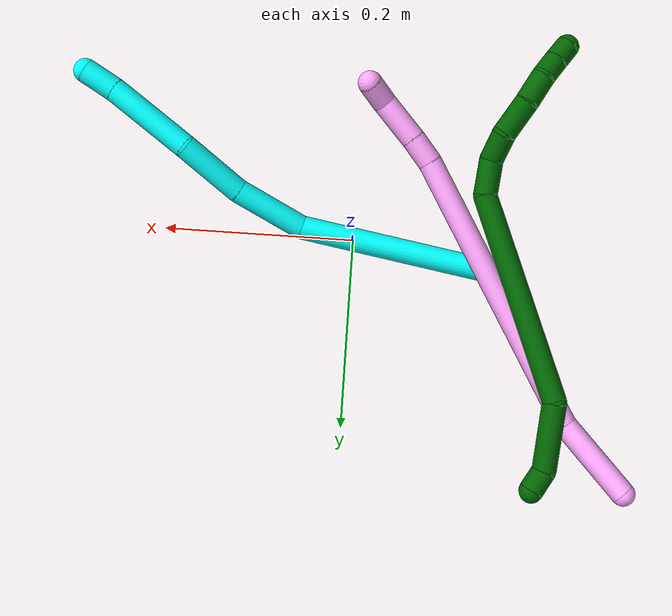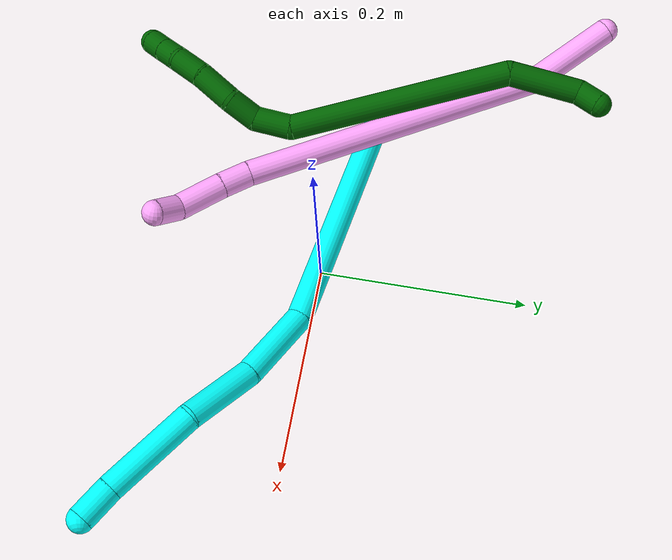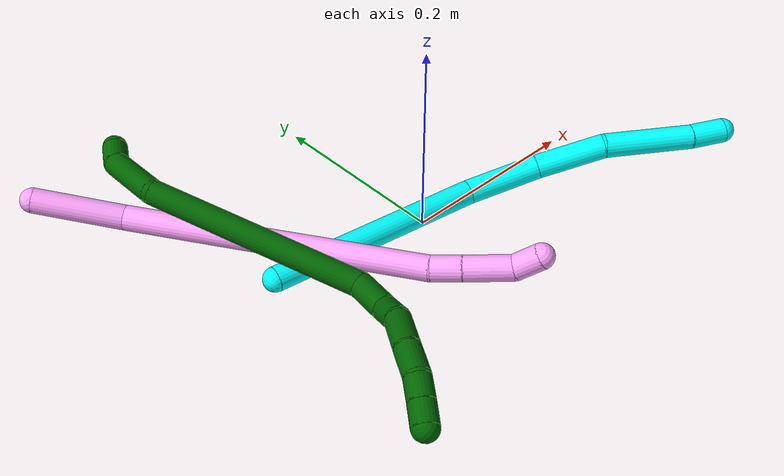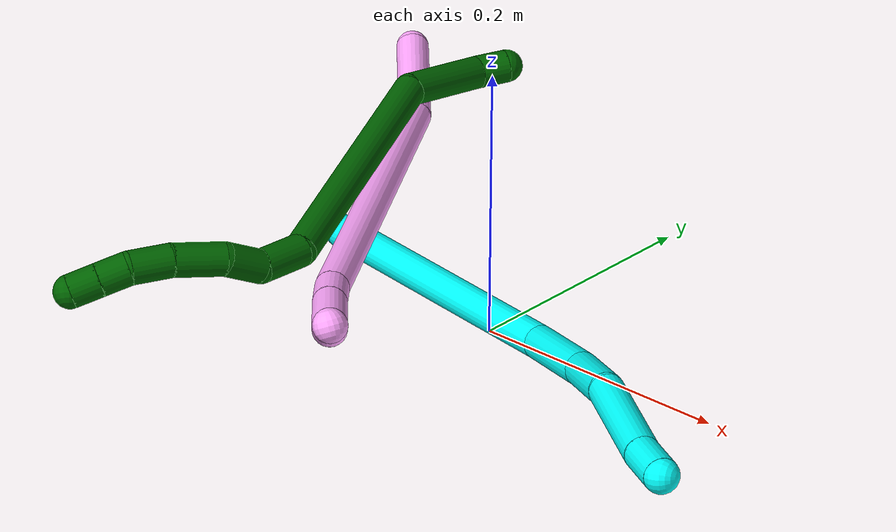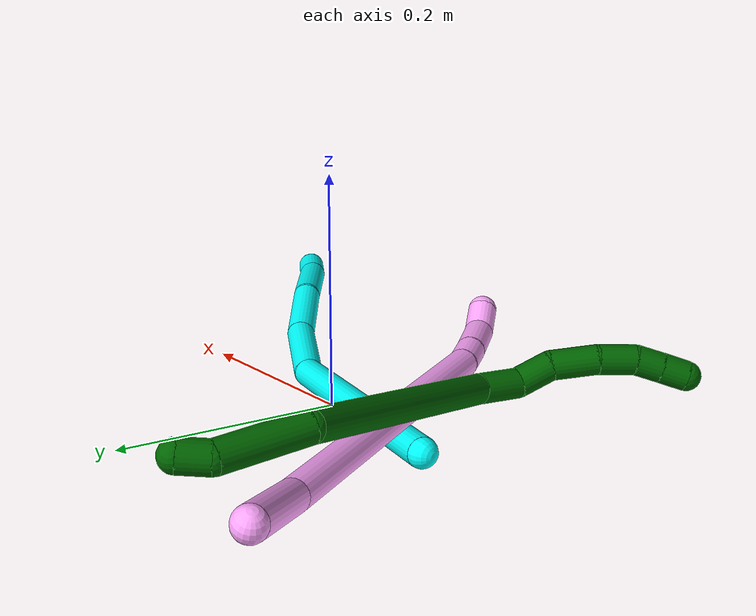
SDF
<sdf version="1.7">
 <world name="default">
  <model name="3">
   <static>0</static>
   <link name="3">
    <collision name="collision-cylinder-e_1_1_4">
     <pose>0.045369 -0.010162 0.103135 0.09821 0.412641 0.020571</pose>
     <geometry><cylinder><radius>0.0125</radius><length>0.226261</length></cylinder></geometry>
     <surface>
      <friction><ode><mu>1.16</mu><mu2>1.16</mu2><slip1>0</slip1><slip2>0</slip2></ode></friction>
      <contact><ode><kp>1e+06</kp><kd>1</kd><max_vel>0</max_vel><min_depth>0.001</min_depth></ode></contact>
     </surface>
    </collision>
    <visual name="visual-cylinder-e_1_1_4">
     <pose>0.045369 -0.010162 0.103135 0.09821 0.412641 0.020571</pose>
     <geometry><cylinder><radius>0.0125</radius><length>0.226261</length></cylinder></geometry>
     <material><ambient>0.003922 1 0.996078 1</ambient></material>
    </visual>
    <collision name="collision-cylinder-e_2_4_5">
     <pose>0.110713 -0.03498 0.235279 0.467855 0.551114 0.13455</pose>
     <geometry><cylinder><radius>0.0125</radius><length>0.076297</length></cylinder></geometry>
     <surface>
      <friction><ode><mu>1.16</mu><mu2>1.16</mu2><slip1>0</slip1><slip2>0</slip2></ode></friction>
      <contact><ode><kp>1e+06</kp><kd>1</kd><max_vel>0</max_vel><min_depth>0.001</min_depth></ode></contact>
     </surface>
    </collision>
    <visual name="visual-cylinder-e_2_4_5">
     <pose>0.110713 -0.03498 0.235279 0.467855 0.551114 0.13455</pose>
     <geometry><cylinder><radius>0.0125</radius><length>0.076297</length></cylinder></geometry>
     <material><ambient>0.003922 1 0.996078 1</ambient></material>
    </visual>
    <collision name="collision-cylinder-e_3_5_6">
     <pose>0.151492 -0.067876 0.286921 0.678273 0.621159 0.225492</pose>
     <geometry><cylinder><radius>0.0125</radius><length>0.071491</length></cylinder></geometry>
     <surface>
      <friction><ode><mu>1.16</mu><mu2>1.16</mu2><slip1>0</slip1><slip2>0</slip2></ode></friction>
      <contact><ode><kp>1e+06</kp><kd>1</kd><max_vel>0</max_vel><min_depth>0.001</min_depth></ode></contact>
     </surface>
    </collision>
    <visual name="visual-cylinder-e_3_5_6">
     <pose>0.151492 -0.067876 0.286921 0.678273 0.621159 0.225492</pose>
     <geometry><cylinder><radius>0.0125</radius><length>0.071491</length></cylinder></geometry>
     <material><ambient>0.003922 1 0.996078 1</ambient></material>
    </visual>
    <collision name="collision-cylinder-e_4_6_7">
     <pose>0.204734 -0.098512 0.33908 0.397541 0.791845 0.167997</pose>
     <geometry><cylinder><radius>0.0125</radius><length>0.091164</length></cylinder></geometry>
     <surface>
      <friction><ode><mu>1.16</mu><mu2>1.16</mu2><slip1>0</slip1><slip2>0</slip2></ode></friction>
      <contact><ode><kp>1e+06</kp><kd>1</kd><max_vel>0</max_vel><min_depth>0.001</min_depth></ode></contact>
     </surface>
    </collision>
    <visual name="visual-cylinder-e_4_6_7">
     <pose>0.204734 -0.098512 0.33908 0.397541 0.791845 0.167997</pose>
     <geometry><cylinder><radius>0.0125</radius><length>0.091164</length></cylinder></geometry>
     <material><ambient>0.003922 1 0.996078 1</ambient></material>
    </visual>
    <collision name="collision-cylinder-e_5_7_2">
     <pose>0.248239 -0.115695 0.381142 0.364656 0.689661 0.132255</pose>
     <geometry><cylinder><radius>0.0125</radius><length>0.034788</length></cylinder></geometry>
     <surface>
      <friction><ode><mu>1.16</mu><mu2>1.16</mu2><slip1>0</slip1><slip2>0</slip2></ode></friction>
      <contact><ode><kp>1e+06</kp><kd>1</kd><max_vel>0</max_vel><min_depth>0.001</min_depth></ode></contact>
     </surface>
    </collision>
    <visual name="visual-cylinder-e_5_7_2">
     <pose>0.248239 -0.115695 0.381142 0.364656 0.689661 0.132255</pose>
     <geometry><cylinder><radius>0.0125</radius><length>0.034788</length></cylinder></geometry>
     <material><ambient>0.003922 1 0.996078 1</ambient></material>
    </visual>
    <collision name="collision-sphere-2">
     <pose>0.259307 -0.120481 0.393679 0 -0 0</pose>
     <geometry><sphere><radius>0.0125</radius></sphere></geometry>
     <surface>
      <friction><ode><mu>1.16</mu><mu2>1.16</mu2><slip1>0</slip1><slip2>0</slip2></ode></friction>
      <contact><ode><kp>1e+06</kp><kd>1</kd><max_vel>0</max_vel><min_depth>0.001</min_depth></ode></contact>
     </surface>
    </collision>
    <visual name="visual-sphere-2">
     <pose>0.259307 -0.120481 0.393679 0 -0 0</pose>
     <geometry><sphere><radius>0.0125</radius></sphere></geometry>
     <material><ambient>0.003922 1 0.996078 1</ambient></material>
    </visual>
    <collision name="collision-sphere-7">
     <pose>0.237172 -0.11091 0.368606 0 -0 0</pose>
     <geometry><sphere><radius>0.0125</radius></sphere></geometry>
     <surface>
      <friction><ode><mu>1.16</mu><mu2>1.16</mu2><slip1>0</slip1><slip2>0</slip2></ode></friction>
      <contact><ode><kp>1e+06</kp><kd>1</kd><max_vel>0</max_vel><min_depth>0.001</min_depth></ode></contact>
     </surface>
    </collision>
    <visual name="visual-sphere-7">
     <pose>0.237172 -0.11091 0.368606 0 -0 0</pose>
     <geometry><sphere><radius>0.0125</radius></sphere></geometry>
     <material><ambient>0.003922 1 0.996078 1</ambient></material>
    </visual>
    <collision name="collision-sphere-6">
     <pose>0.172295 -0.086115 0.309555 0 -0 0</pose>
     <geometry><sphere><radius>0.0125</radius></sphere></geometry>
     <surface>
      <friction><ode><mu>1.16</mu><mu2>1.16</mu2><slip1>0</slip1><slip2>0</slip2></ode></friction>
      <contact><ode><kp>1e+06</kp><kd>1</kd><max_vel>0</max_vel><min_depth>0.001</min_depth></ode></contact>
     </surface>
    </collision>
    <visual name="visual-sphere-6">
     <pose>0.172295 -0.086115 0.309555 0 -0 0</pose>
     <geometry><sphere><radius>0.0125</radius></sphere></geometry>
     <material><ambient>0.003922 1 0.996078 1</ambient></material>
    </visual>
    <collision name="collision-sphere-5">
     <pose>0.130689 -0.049637 0.264287 0 -0 0</pose>
     <geometry><sphere><radius>0.0125</radius></sphere></geometry>
     <surface>
      <friction><ode><mu>1.16</mu><mu2>1.16</mu2><slip1>0</slip1><slip2>0</slip2></ode></friction>
      <contact><ode><kp>1e+06</kp><kd>1</kd><max_vel>0</max_vel><min_depth>0.001</min_depth></ode></contact>
     </surface>
    </collision>
    <visual name="visual-sphere-5">
     <pose>0.130689 -0.049637 0.264287 0 -0 0</pose>
     <geometry><sphere><radius>0.0125</radius></sphere></geometry>
     <material><ambient>0.003922 1 0.996078 1</ambient></material>
    </visual>
    <collision name="collision-sphere-1">
     <geometry><sphere><radius>0.0125</radius></sphere></geometry>
     <surface>
      <friction><ode><mu>1.16</mu><mu2>1.16</mu2><slip1>0</slip1><slip2>0</slip2></ode></friction>
      <contact><ode><kp>1e+06</kp><kd>1</kd><max_vel>0</max_vel><min_depth>0.001</min_depth></ode></contact>
     </surface>
    </collision>
    <visual name="visual-sphere-1">
     <geometry><sphere><radius>0.0125</radius></sphere></geometry>
     <material><ambient>0.003922 1 0.996078 1</ambient></material>
    </visual>
    <collision name="collision-sphere-4">
     <pose>0.090737 -0.020323 0.206271 0 -0 0</pose>
     <geometry><sphere><radius>0.0125</radius></sphere></geometry>
     <surface>
      <friction><ode><mu>1.16</mu><mu2>1.16</mu2><slip1>0</slip1><slip2>0</slip2></ode></friction>
      <contact><ode><kp>1e+06</kp><kd>1</kd><max_vel>0</max_vel><min_depth>0.001</min_depth></ode></contact>
     </surface>
    </collision>
    <visual name="visual-sphere-4">
     <pose>0.090737 -0.020323 0.206271 0 -0 0</pose>
     <geometry><sphere><radius>0.0125</radius></sphere></geometry>
     <material><ambient>0.003922 1 0.996078 1</ambient></material>
    </visual>
    <inertial>
     <pose>0.113685 -0.045652 0.211939 0 -0 0</pose>
     <mass>0.5</mass>
     <inertia>
      <ixx>0.00106</ixx>
      <ixy>0</ixy>
      <ixz>0</ixz>
      <iyy>0.001131</iyy>
      <iyz>0</iyz>
      <izz>-0.000311</izz>
     </inertia>
    </inertial>
   </link>
   <pose>-0.168275 0.026631 0.012626 -1.45761 0.424065 -1.27228</pose>
  </model>
  <model name="4">
   <static>0</static>
   <link name="4">
    <collision name="collision-cylinder-e_1_1_4">
     <pose>0.007569 -0.036116 -0.025963 2.19409 0.168548 0.326597</pose>
     <geometry><cylinder><radius>0.0125</radius><length>0.090238</length></cylinder></geometry>
     <surface>
      <friction><ode><mu>1.16</mu><mu2>1.16</mu2><slip1>0</slip1><slip2>0</slip2></ode></friction>
      <contact><ode><kp>1e+06</kp><kd>1</kd><max_vel>0</max_vel><min_depth>0.001</min_depth></ode></contact>
     </surface>
    </collision>
    <visual name="visual-cylinder-e_1_1_4">
     <pose>0.007569 -0.036116 -0.025963 2.19409 0.168548 0.326597</pose>
     <geometry><cylinder><radius>0.0125</radius><length>0.090238</length></cylinder></geometry>
     <material><ambient>1 0.65098 0.996078 1</ambient></material>
    </visual>
    <collision name="collision-cylinder-e_2_4_5">
     <pose>0.025771 -0.216247 -0.101269 1.90088 0.069739 0.097575</pose>
     <geometry><cylinder><radius>0.0125</radius><length>0.30521</length></cylinder></geometry>
     <surface>
      <friction><ode><mu>1.16</mu><mu2>1.16</mu2><slip1>0</slip1><slip2>0</slip2></ode></friction>
      <contact><ode><kp>1e+06</kp><kd>1</kd><max_vel>0</max_vel><min_depth>0.001</min_depth></ode></contact>
     </surface>
    </collision>
    <visual name="visual-cylinder-e_2_4_5">
     <pose>0.025771 -0.216247 -0.101269 1.90088 0.069739 0.097575</pose>
     <geometry><cylinder><radius>0.0125</radius><length>0.30521</length></cylinder></geometry>
     <material><ambient>1 0.65098 0.996078 1</ambient></material>
    </visual>
    <collision name="collision-cylinder-e_3_5_6">
     <pose>0.039943 -0.373985 -0.155159 1.89085 0.240016 0.330962</pose>
     <geometry><cylinder><radius>0.0125</radius><length>0.029765</length></cylinder></geometry>
     <surface>
      <friction><ode><mu>1.16</mu><mu2>1.16</mu2><slip1>0</slip1><slip2>0</slip2></ode></friction>
      <contact><ode><kp>1e+06</kp><kd>1</kd><max_vel>0</max_vel><min_depth>0.001</min_depth></ode></contact>
     </surface>
    </collision>
    <visual name="visual-cylinder-e_3_5_6">
     <pose>0.039943 -0.373985 -0.155159 1.89085 0.240016 0.330962</pose>
     <geometry><cylinder><radius>0.0125</radius><length>0.029765</length></cylinder></geometry>
     <material><ambient>1 0.65098 0.996078 1</ambient></material>
    </visual>
    <collision name="collision-cylinder-e_4_6_7">
     <pose>0.050038 -0.408904 -0.167649 1.92928 0.281955 0.403874</pose>
     <geometry><cylinder><radius>0.0125</radius><length>0.047133</length></cylinder></geometry>
     <surface>
      <friction><ode><mu>1.16</mu><mu2>1.16</mu2><slip1>0</slip1><slip2>0</slip2></ode></friction>
      <contact><ode><kp>1e+06</kp><kd>1</kd><max_vel>0</max_vel><min_depth>0.001</min_depth></ode></contact>
     </surface>
    </collision>
    <visual name="visual-cylinder-e_4_6_7">
     <pose>0.050038 -0.408904 -0.167649 1.92928 0.281955 0.403874</pose>
     <geometry><cylinder><radius>0.0125</radius><length>0.047133</length></cylinder></geometry>
     <material><ambient>1 0.65098 0.996078 1</ambient></material>
    </visual>
    <collision name="collision-cylinder-e_5_7_2">
     <pose>0.062589 -0.442443 -0.173877 1.43277 0.448328 0.391934</pose>
     <geometry><cylinder><radius>0.0125</radius><length>0.027654</length></cylinder></geometry>
     <surface>
      <friction><ode><mu>1.16</mu><mu2>1.16</mu2><slip1>0</slip1><slip2>0</slip2></ode></friction>
      <contact><ode><kp>1e+06</kp><kd>1</kd><max_vel>0</max_vel><min_depth>0.001</min_depth></ode></contact>
     </surface>
    </collision>
    <visual name="visual-cylinder-e_5_7_2">
     <pose>0.062589 -0.442443 -0.173877 1.43277 0.448328 0.391934</pose>
     <geometry><cylinder><radius>0.0125</radius><length>0.027654</length></cylinder></geometry>
     <material><ambient>1 0.65098 0.996078 1</ambient></material>
    </visual>
    <collision name="collision-sphere-2">
     <pose>0.068582 -0.454785 -0.172162 0 -0 0</pose>
     <geometry><sphere><radius>0.0125</radius></sphere></geometry>
     <surface>
      <friction><ode><mu>1.16</mu><mu2>1.16</mu2><slip1>0</slip1><slip2>0</slip2></ode></friction>
      <contact><ode><kp>1e+06</kp><kd>1</kd><max_vel>0</max_vel><min_depth>0.001</min_depth></ode></contact>
     </surface>
    </collision>
    <visual name="visual-sphere-2">
     <pose>0.068582 -0.454785 -0.172162 0 -0 0</pose>
     <geometry><sphere><radius>0.0125</radius></sphere></geometry>
     <material><ambient>1 0.65098 0.996078 1</ambient></material>
    </visual>
    <collision name="collision-sphere-7">
     <pose>0.056595 -0.430101 -0.175591 0 -0 0</pose>
     <geometry><sphere><radius>0.0125</radius></sphere></geometry>
     <surface>
      <friction><ode><mu>1.16</mu><mu2>1.16</mu2><slip1>0</slip1><slip2>0</slip2></ode></friction>
      <contact><ode><kp>1e+06</kp><kd>1</kd><max_vel>0</max_vel><min_depth>0.001</min_depth></ode></contact>
     </surface>
    </collision>
    <visual name="visual-sphere-7">
     <pose>0.056595 -0.430101 -0.175591 0 -0 0</pose>
     <geometry><sphere><radius>0.0125</radius></sphere></geometry>
     <material><ambient>1 0.65098 0.996078 1</ambient></material>
    </visual>
    <collision name="collision-sphere-6">
     <pose>0.043481 -0.387706 -0.159707 0 -0 0</pose>
     <geometry><sphere><radius>0.0125</radius></sphere></geometry>
     <surface>
      <friction><ode><mu>1.16</mu><mu2>1.16</mu2><slip1>0</slip1><slip2>0</slip2></ode></friction>
      <contact><ode><kp>1e+06</kp><kd>1</kd><max_vel>0</max_vel><min_depth>0.001</min_depth></ode></contact>
     </surface>
    </collision>
    <visual name="visual-sphere-6">
     <pose>0.043481 -0.387706 -0.159707 0 -0 0</pose>
     <geometry><sphere><radius>0.0125</radius></sphere></geometry>
     <material><ambient>1 0.65098 0.996078 1</ambient></material>
    </visual>
    <collision name="collision-sphere-5">
     <pose>0.036405 -0.360263 -0.150611 0 -0 0</pose>
     <geometry><sphere><radius>0.0125</radius></sphere></geometry>
     <surface>
      <friction><ode><mu>1.16</mu><mu2>1.16</mu2><slip1>0</slip1><slip2>0</slip2></ode></friction>
      <contact><ode><kp>1e+06</kp><kd>1</kd><max_vel>0</max_vel><min_depth>0.001</min_depth></ode></contact>
     </surface>
    </collision>
    <visual name="visual-sphere-5">
     <pose>0.036405 -0.360263 -0.150611 0 -0 0</pose>
     <geometry><sphere><radius>0.0125</radius></sphere></geometry>
     <material><ambient>1 0.65098 0.996078 1</ambient></material>
    </visual>
    <collision name="collision-sphere-1">
     <geometry><sphere><radius>0.0125</radius></sphere></geometry>
     <surface>
      <friction><ode><mu>1.16</mu><mu2>1.16</mu2><slip1>0</slip1><slip2>0</slip2></ode></friction>
      <contact><ode><kp>1e+06</kp><kd>1</kd><max_vel>0</max_vel><min_depth>0.001</min_depth></ode></contact>
     </surface>
    </collision>
    <visual name="visual-sphere-1">
     <geometry><sphere><radius>0.0125</radius></sphere></geometry>
     <material><ambient>1 0.65098 0.996078 1</ambient></material>
    </visual>
    <collision name="collision-sphere-4">
     <pose>0.015138 -0.072231 -0.051927 0 -0 0</pose>
     <geometry><sphere><radius>0.0125</radius></sphere></geometry>
     <surface>
      <friction><ode><mu>1.16</mu><mu2>1.16</mu2><slip1>0</slip1><slip2>0</slip2></ode></friction>
      <contact><ode><kp>1e+06</kp><kd>1</kd><max_vel>0</max_vel><min_depth>0.001</min_depth></ode></contact>
     </surface>
    </collision>
    <visual name="visual-sphere-4">
     <pose>0.015138 -0.072231 -0.051927 0 -0 0</pose>
     <geometry><sphere><radius>0.0125</radius></sphere></geometry>
     <material><ambient>1 0.65098 0.996078 1</ambient></material>
    </visual>
    <inertial>
     <pose>0.027654 -0.223799 -0.101159 0 -0 0</pose>
     <mass>0.5</mass>
     <inertia>
      <ixx>0.002703</ixx>
      <ixy>0</ixy>
      <ixz>0</ixz>
      <iyy>-0.000566</iyy>
      <iyz>0</iyz>
      <izz>0.002119</izz>
     </inertia>
    </inertial>
   </link>
   <pose>-0.292626 0.241164 0.05016 -0.331967 -0.408825 0.480367</pose>
  </model>
  <model name="6">
   <static>0</static>
   <link name="6">
    <collision name="collision-cylinder-e_1_1_4">
     <pose>-0.010309 -0.00529 -0.003101 2.101 -1.03417 -1.56334</pose>
     <geometry><cylinder><radius>0.0125</radius><length>0.02399</length></cylinder></geometry>
     <surface>
      <friction><ode><mu>1.16</mu><mu2>1.16</mu2><slip1>0</slip1><slip2>0</slip2></ode></friction>
      <contact><ode><kp>1e+06</kp><kd>1</kd><max_vel>0</max_vel><min_depth>0.001</min_depth></ode></contact>
     </surface>
    </collision>
    <visual name="visual-cylinder-e_1_1_4">
     <pose>-0.010309 -0.00529 -0.003101 2.101 -1.03417 -1.56334</pose>
     <geometry><cylinder><radius>0.0125</radius><length>0.02399</length></cylinder></geometry>
     <material><ambient>0 0.392157 0.003922 1</ambient></material>
    </visual>
    <collision name="collision-cylinder-e_2_4_5">
     <pose>-0.038561 -0.038373 -0.019631 2.0209 -0.526558 -0.811501</pose>
     <geometry><cylinder><radius>0.0125</radius><length>0.071405</length></cylinder></geometry>
     <surface>
      <friction><ode><mu>1.16</mu><mu2>1.16</mu2><slip1>0</slip1><slip2>0</slip2></ode></friction>
      <contact><ode><kp>1e+06</kp><kd>1</kd><max_vel>0</max_vel><min_depth>0.001</min_depth></ode></contact>
     </surface>
    </collision>
    <visual name="visual-cylinder-e_2_4_5">
     <pose>-0.038561 -0.038373 -0.019631 2.0209 -0.526558 -0.811501</pose>
     <geometry><cylinder><radius>0.0125</radius><length>0.071405</length></cylinder></geometry>
     <material><ambient>0 0.392157 0.003922 1</ambient></material>
    </visual>
    <collision name="collision-cylinder-e_3_5_6">
     <pose>-0.074422 -0.140168 -0.113436 2.39745 -0.162557 -0.41156</pose>
     <geometry><cylinder><radius>0.0125</radius><length>0.22143</length></cylinder></geometry>
     <surface>
      <friction><ode><mu>1.16</mu><mu2>1.16</mu2><slip1>0</slip1><slip2>0</slip2></ode></friction>
      <contact><ode><kp>1e+06</kp><kd>1</kd><max_vel>0</max_vel><min_depth>0.001</min_depth></ode></contact>
     </surface>
    </collision>
    <visual name="visual-cylinder-e_3_5_6">
     <pose>-0.074422 -0.140168 -0.113436 2.39745 -0.162557 -0.41156</pose>
     <geometry><cylinder><radius>0.0125</radius><length>0.22143</length></cylinder></geometry>
     <material><ambient>0 0.392157 0.003922 1</ambient></material>
    </visual>
    <collision name="collision-cylinder-e_4_6_7">
     <pose>-0.103035 -0.227104 -0.202399 2.1569 -0.603268 -1.0512</pose>
     <geometry><cylinder><radius>0.0125</radius><length>0.037703</length></cylinder></geometry>
     <surface>
      <friction><ode><mu>1.16</mu><mu2>1.16</mu2><slip1>0</slip1><slip2>0</slip2></ode></friction>
      <contact><ode><kp>1e+06</kp><kd>1</kd><max_vel>0</max_vel><min_depth>0.001</min_depth></ode></contact>
     </surface>
    </collision>
    <visual name="visual-cylinder-e_4_6_7">
     <pose>-0.103035 -0.227104 -0.202399 2.1569 -0.603268 -1.0512</pose>
     <geometry><cylinder><radius>0.0125</radius><length>0.037703</length></cylinder></geometry>
     <material><ambient>0 0.392157 0.003922 1</ambient></material>
    </visual>
    <collision name="collision-cylinder-e_5_7_8">
     <pose>-0.122842 -0.252449 -0.210607 1.54034 -0.633056 -0.615254</pose>
     <geometry><cylinder><radius>0.0125</radius><length>0.030804</length></cylinder></geometry>
     <surface>
      <friction><ode><mu>1.16</mu><mu2>1.16</mu2><slip1>0</slip1><slip2>0</slip2></ode></friction>
      <contact><ode><kp>1e+06</kp><kd>1</kd><max_vel>0</max_vel><min_depth>0.001</min_depth></ode></contact>
     </surface>
    </collision>
    <visual name="visual-cylinder-e_5_7_8">
     <pose>-0.122842 -0.252449 -0.210607 1.54034 -0.633056 -0.615254</pose>
     <geometry><cylinder><radius>0.0125</radius><length>0.030804</length></cylinder></geometry>
     <material><ambient>0 0.392157 0.003922 1</ambient></material>
    </visual>
    <collision name="collision-cylinder-e_6_8_9">
     <pose>-0.147983 -0.275693 -0.212117 1.74333 -0.969546 -1.11923</pose>
     <geometry><cylinder><radius>0.0125</radius><length>0.038876</length></cylinder></geometry>
     <surface>
      <friction><ode><mu>1.16</mu><mu2>1.16</mu2><slip1>0</slip1><slip2>0</slip2></ode></friction>
      <contact><ode><kp>1e+06</kp><kd>1</kd><max_vel>0</max_vel><min_depth>0.001</min_depth></ode></contact>
     </surface>
    </collision>
    <visual name="visual-cylinder-e_6_8_9">
     <pose>-0.147983 -0.275693 -0.212117 1.74333 -0.969546 -1.11923</pose>
     <geometry><cylinder><radius>0.0125</radius><length>0.038876</length></cylinder></geometry>
     <material><ambient>0 0.392157 0.003922 1</ambient></material>
    </visual>
    <collision name="collision-cylinder-e_7_9_10">
     <pose>-0.177151 -0.294222 -0.217754 2.02408 -0.993257 -1.42832</pose>
     <geometry><cylinder><radius>0.0125</radius><length>0.031365</length></cylinder></geometry>
     <surface>
      <friction><ode><mu>1.16</mu><mu2>1.16</mu2><slip1>0</slip1><slip2>0</slip2></ode></friction>
      <contact><ode><kp>1e+06</kp><kd>1</kd><max_vel>0</max_vel><min_depth>0.001</min_depth></ode></contact>
     </surface>
    </collision>
    <visual name="visual-cylinder-e_7_9_10">
     <pose>-0.177151 -0.294222 -0.217754 2.02408 -0.993257 -1.42832</pose>
     <geometry><cylinder><radius>0.0125</radius><length>0.031365</length></cylinder></geometry>
     <material><ambient>0 0.392157 0.003922 1</ambient></material>
    </visual>
    <collision name="collision-cylinder-e_8_10_11">
     <pose>-0.200341 -0.304581 -0.225609 2.56646 -1.11773 -2.25805</pose>
     <geometry><cylinder><radius>0.0125</radius><length>0.022357</length></cylinder></geometry>
     <surface>
      <friction><ode><mu>1.16</mu><mu2>1.16</mu2><slip1>0</slip1><slip2>0</slip2></ode></friction>
      <contact><ode><kp>1e+06</kp><kd>1</kd><max_vel>0</max_vel><min_depth>0.001</min_depth></ode></contact>
     </surface>
    </collision>
    <visual name="visual-cylinder-e_8_10_11">
     <pose>-0.200341 -0.304581 -0.225609 2.56646 -1.11773 -2.25805</pose>
     <geometry><cylinder><radius>0.0125</radius><length>0.022357</length></cylinder></geometry>
     <material><ambient>0 0.392157 0.003922 1</ambient></material>
    </visual>
    <collision name="collision-cylinder-e_9_11_2">
     <pose>-0.220402 -0.30964 -0.233692 2.59914 -1.13653 -2.32013</pose>
     <geometry><cylinder><radius>0.0125</radius><length>0.02207</length></cylinder></geometry>
     <surface>
      <friction><ode><mu>1.16</mu><mu2>1.16</mu2><slip1>0</slip1><slip2>0</slip2></ode></friction>
      <contact><ode><kp>1e+06</kp><kd>1</kd><max_vel>0</max_vel><min_depth>0.001</min_depth></ode></contact>
     </surface>
    </collision>
    <visual name="visual-cylinder-e_9_11_2">
     <pose>-0.220402 -0.30964 -0.233692 2.59914 -1.13653 -2.32013</pose>
     <geometry><cylinder><radius>0.0125</radius><length>0.02207</length></cylinder></geometry>
     <material><ambient>0 0.392157 0.003922 1</ambient></material>
    </visual>
    <collision name="collision-sphere-2">
     <pose>-0.230413 -0.312037 -0.237668 0 -0 0</pose>
     <geometry><sphere><radius>0.0125</radius></sphere></geometry>
     <surface>
      <friction><ode><mu>1.16</mu><mu2>1.16</mu2><slip1>0</slip1><slip2>0</slip2></ode></friction>
      <contact><ode><kp>1e+06</kp><kd>1</kd><max_vel>0</max_vel><min_depth>0.001</min_depth></ode></contact>
     </surface>
    </collision>
    <visual name="visual-sphere-2">
     <pose>-0.230413 -0.312037 -0.237668 0 -0 0</pose>
     <geometry><sphere><radius>0.0125</radius></sphere></geometry>
     <material><ambient>0 0.392157 0.003922 1</ambient></material>
    </visual>
    <collision name="collision-sphere-11">
     <pose>-0.210391 -0.307243 -0.229715 0 -0 0</pose>
     <geometry><sphere><radius>0.0125</radius></sphere></geometry>
     <surface>
      <friction><ode><mu>1.16</mu><mu2>1.16</mu2><slip1>0</slip1><slip2>0</slip2></ode></friction>
      <contact><ode><kp>1e+06</kp><kd>1</kd><max_vel>0</max_vel><min_depth>0.001</min_depth></ode></contact>
     </surface>
    </collision>
    <visual name="visual-sphere-11">
     <pose>-0.210391 -0.307243 -0.229715 0 -0 0</pose>
     <geometry><sphere><radius>0.0125</radius></sphere></geometry>
     <material><ambient>0 0.392157 0.003922 1</ambient></material>
    </visual>
    <collision name="collision-sphere-10">
     <pose>-0.19029 -0.30192 -0.221504 0 -0 0</pose>
     <geometry><sphere><radius>0.0125</radius></sphere></geometry>
     <surface>
      <friction><ode><mu>1.16</mu><mu2>1.16</mu2><slip1>0</slip1><slip2>0</slip2></ode></friction>
      <contact><ode><kp>1e+06</kp><kd>1</kd><max_vel>0</max_vel><min_depth>0.001</min_depth></ode></contact>
     </surface>
    </collision>
    <visual name="visual-sphere-10">
     <pose>-0.19029 -0.30192 -0.221504 0 -0 0</pose>
     <geometry><sphere><radius>0.0125</radius></sphere></geometry>
     <material><ambient>0 0.392157 0.003922 1</ambient></material>
    </visual>
    <collision name="collision-sphere-9">
     <pose>-0.164012 -0.286525 -0.214005 0 -0 0</pose>
     <geometry><sphere><radius>0.0125</radius></sphere></geometry>
     <surface>
      <friction><ode><mu>1.16</mu><mu2>1.16</mu2><slip1>0</slip1><slip2>0</slip2></ode></friction>
      <contact><ode><kp>1e+06</kp><kd>1</kd><max_vel>0</max_vel><min_depth>0.001</min_depth></ode></contact>
     </surface>
    </collision>
    <visual name="visual-sphere-9">
     <pose>-0.164012 -0.286525 -0.214005 0 -0 0</pose>
     <geometry><sphere><radius>0.0125</radius></sphere></geometry>
     <material><ambient>0 0.392157 0.003922 1</ambient></material>
    </visual>
    <collision name="collision-sphere-4">
     <pose>-0.020618 -0.010581 -0.006202 0 -0 0</pose>
     <geometry><sphere><radius>0.0125</radius></sphere></geometry>
     <surface>
      <friction><ode><mu>1.16</mu><mu2>1.16</mu2><slip1>0</slip1><slip2>0</slip2></ode></friction>
      <contact><ode><kp>1e+06</kp><kd>1</kd><max_vel>0</max_vel><min_depth>0.001</min_depth></ode></contact>
     </surface>
    </collision>
    <visual name="visual-sphere-4">
     <pose>-0.020618 -0.010581 -0.006202 0 -0 0</pose>
     <geometry><sphere><radius>0.0125</radius></sphere></geometry>
     <material><ambient>0 0.392157 0.003922 1</ambient></material>
    </visual>
    <collision name="collision-sphere-1">
     <geometry><sphere><radius>0.0125</radius></sphere></geometry>
     <surface>
      <friction><ode><mu>1.16</mu><mu2>1.16</mu2><slip1>0</slip1><slip2>0</slip2></ode></friction>
      <contact><ode><kp>1e+06</kp><kd>1</kd><max_vel>0</max_vel><min_depth>0.001</min_depth></ode></contact>
     </surface>
    </collision>
    <visual name="visual-sphere-1">
     <geometry><sphere><radius>0.0125</radius></sphere></geometry>
     <material><ambient>0 0.392157 0.003922 1</ambient></material>
    </visual>
    <collision name="collision-sphere-8">
     <pose>-0.131954 -0.264861 -0.210229 0 -0 0</pose>
     <geometry><sphere><radius>0.0125</radius></sphere></geometry>
     <surface>
      <friction><ode><mu>1.16</mu><mu2>1.16</mu2><slip1>0</slip1><slip2>0</slip2></ode></friction>
      <contact><ode><kp>1e+06</kp><kd>1</kd><max_vel>0</max_vel><min_depth>0.001</min_depth></ode></contact>
     </surface>
    </collision>
    <visual name="visual-sphere-8">
     <pose>-0.131954 -0.264861 -0.210229 0 -0 0</pose>
     <geometry><sphere><radius>0.0125</radius></sphere></geometry>
     <material><ambient>0 0.392157 0.003922 1</ambient></material>
    </visual>
    <collision name="collision-sphere-5">
     <pose>-0.056503 -0.066165 -0.03306 0 -0 0</pose>
     <geometry><sphere><radius>0.0125</radius></sphere></geometry>
     <surface>
      <friction><ode><mu>1.16</mu><mu2>1.16</mu2><slip1>0</slip1><slip2>0</slip2></ode></friction>
      <contact><ode><kp>1e+06</kp><kd>1</kd><max_vel>0</max_vel><min_depth>0.001</min_depth></ode></contact>
     </surface>
    </collision>
    <visual name="visual-sphere-5">
     <pose>-0.056503 -0.066165 -0.03306 0 -0 0</pose>
     <geometry><sphere><radius>0.0125</radius></sphere></geometry>
     <material><ambient>0 0.392157 0.003922 1</ambient></material>
    </visual>
    <collision name="collision-sphere-6">
     <pose>-0.09234 -0.214171 -0.193812 0 -0 0</pose>
     <geometry><sphere><radius>0.0125</radius></sphere></geometry>
     <surface>
      <friction><ode><mu>1.16</mu><mu2>1.16</mu2><slip1>0</slip1><slip2>0</slip2></ode></friction>
      <contact><ode><kp>1e+06</kp><kd>1</kd><max_vel>0</max_vel><min_depth>0.001</min_depth></ode></contact>
     </surface>
    </collision>
    <visual name="visual-sphere-6">
     <pose>-0.09234 -0.214171 -0.193812 0 -0 0</pose>
     <geometry><sphere><radius>0.0125</radius></sphere></geometry>
     <material><ambient>0 0.392157 0.003922 1</ambient></material>
    </visual>
    <collision name="collision-sphere-7">
     <pose>-0.11373 -0.240037 -0.210986 0 -0 0</pose>
     <geometry><sphere><radius>0.0125</radius></sphere></geometry>
     <surface>
      <friction><ode><mu>1.16</mu><mu2>1.16</mu2><slip1>0</slip1><slip2>0</slip2></ode></friction>
      <contact><ode><kp>1e+06</kp><kd>1</kd><max_vel>0</max_vel><min_depth>0.001</min_depth></ode></contact>
     </surface>
    </collision>
    <visual name="visual-sphere-7">
     <pose>-0.11373 -0.240037 -0.210986 0 -0 0</pose>
     <geometry><sphere><radius>0.0125</radius></sphere></geometry>
     <material><ambient>0 0.392157 0.003922 1</ambient></material>
    </visual>
    <inertial>
     <pose>-0.095603 -0.167665 -0.131981 0 -0 0</pose>
     <mass>0.5</mass>
     <inertia>
      <ixx>0.000439</ixx>
      <ixy>0</ixy>
      <ixz>0</ixz>
      <iyy>-0.00098</iyy>
      <iyz>0</iyz>
      <izz>0.000815</izz>
     </inertia>
    </inertial>
   </link>
   <pose>-0.196314 0.241638 0.06359 -0.717629 -0.210684 0.509659</pose>
  </model>
 </world>
</sdf>
